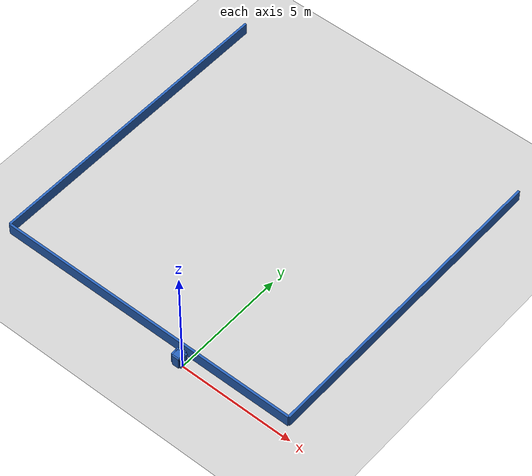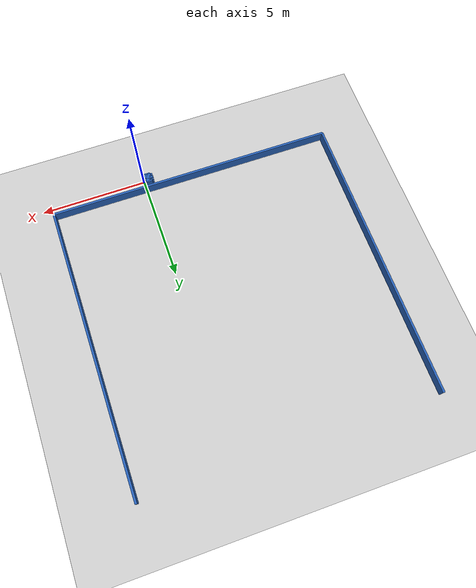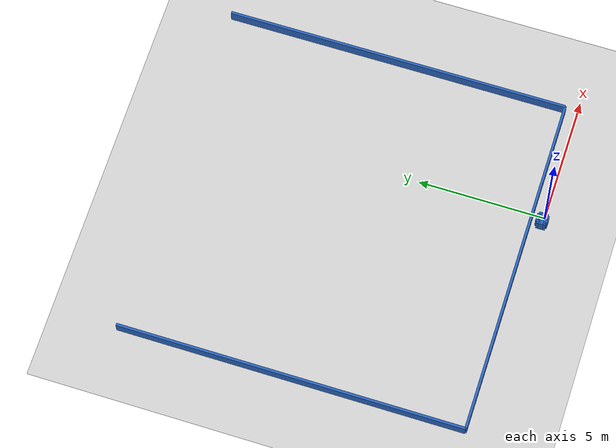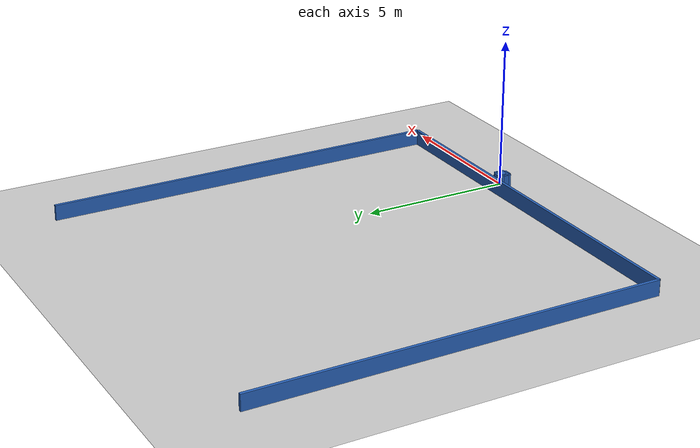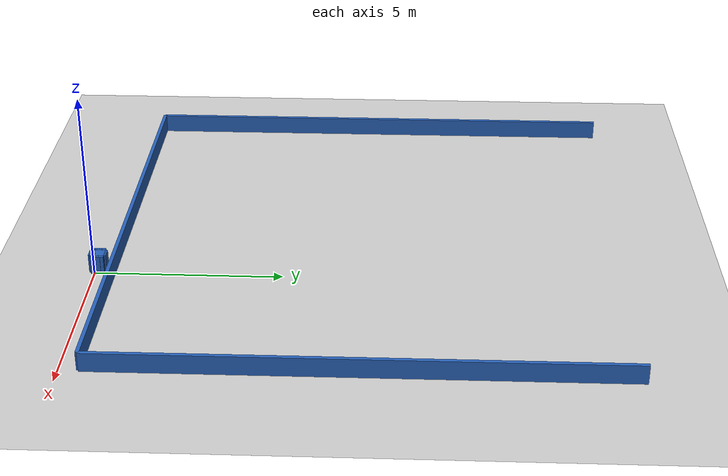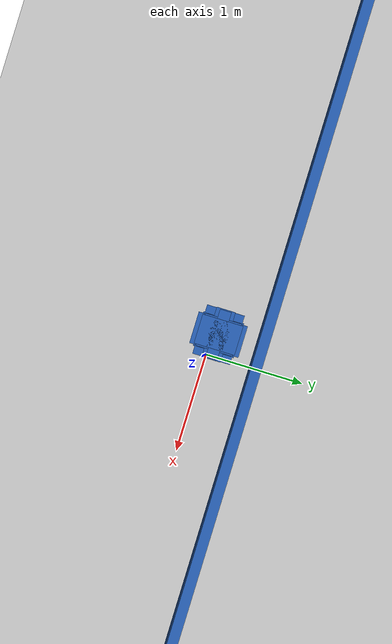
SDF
<?xml version="1.0" ?>
    <sdf version="1.5">
      <world name="default">
        <!-- A global light source -->
        <include>
          <uri>model://sun</uri>
        </include>
        <!-- A ground plane -->
        <include>
          <uri>model://ground_plane</uri>
        </include>

    <model name='libopen_space_final_T2B_56_75'>
      <static>1</static>
      <pose frame=''>-0.225000 0.075000 0.000000 0.000000 0.000000 0.000000</pose>
      <link name='link'>
        <inertial>
          <mass>1</mass>
          <inertia>
            <ixx>0.145833</ixx>
            <ixy>0</ixy>
            <ixz>0</ixz>
            <iyy>0.145833</iyy>
            <iyz>0</iyz>
            <izz>0.125</izz>
          </inertia>
        </inertial>
        <collision name='collision'>
          <geometry>
            <box>
              <size>0.28 0.39 1</size>
            </box>
          </geometry>
          <max_contacts>10</max_contacts>
          <surface>
            <contact>
              <ode/>
            </contact>
            <bounce/>
            <friction>
              <torsional>
                <ode/>
              </torsional>
              <ode/>
            </friction>
          </surface>
        </collision>
        <visual name='visual'>
          <geometry>
            <box>
              <size>0.28 0.39 1</size>
            </box>
          </geometry>
	    <material>
              <ambient>0.152000 0.379000 0.720000 1</ambient>
	      <diffuse>0.152000 0.379000 0.720000 1</diffuse>
          </material>
          <material>
            <script>
              <name>Gazebo/Grey</name>
              <uri>file://media/materials/scripts/gazebo.material</uri>
            </script>
          </material>
        </visual>
        <self_collide>0</self_collide>
        <kinematic>0</kinematic>
        <gravity>1</gravity>
      </link>
      <plugin name='libopen_space_final_T2B_56_75' filename='libopen_space_final_T2B_56_75.so'/>
    </model>

    <model name='libopen_space_final_T2B_99_64'>
      <static>1</static>
      <pose frame=''>-0.225000 0.075000 0.000000 0.000000 0.000000 0.000000</pose>
      <link name='link'>
        <inertial>
          <mass>1</mass>
          <inertia>
            <ixx>0.145833</ixx>
            <ixy>0</ixy>
            <ixz>0</ixz>
            <iyy>0.145833</iyy>
            <iyz>0</iyz>
            <izz>0.125</izz>
          </inertia>
        </inertial>
        <collision name='collision'>
          <geometry>
            <box>
              <size>0.46 0.11 1</size>
            </box>
          </geometry>
          <max_contacts>10</max_contacts>
          <surface>
            <contact>
              <ode/>
            </contact>
            <bounce/>
            <friction>
              <torsional>
                <ode/>
              </torsional>
              <ode/>
            </friction>
          </surface>
        </collision>
        <visual name='visual'>
          <geometry>
            <box>
              <size>0.46 0.11 1</size>
            </box>
          </geometry>
	    <material>
              <ambient>0.152000 0.379000 0.720000 1</ambient>
	      <diffuse>0.152000 0.379000 0.720000 1</diffuse>
          </material>
          <material>
            <script>
              <name>Gazebo/Grey</name>
              <uri>file://media/materials/scripts/gazebo.material</uri>
            </script>
          </material>
        </visual>
        <self_collide>0</self_collide>
        <kinematic>0</kinematic>
        <gravity>1</gravity>
      </link>
      <plugin name='libopen_space_final_T2B_99_64' filename='libopen_space_final_T2B_99_64.so'/>
    </model>

    <model name='libopen_space_final_T2B_119_97'>
      <static>1</static>
      <pose frame=''>-0.225000 0.075000 0.000000 0.000000 0.000000 0.000000</pose>
      <link name='link'>
        <inertial>
          <mass>1</mass>
          <inertia>
            <ixx>0.145833</ixx>
            <ixy>0</ixy>
            <ixz>0</ixz>
            <iyy>0.145833</iyy>
            <iyz>0</iyz>
            <izz>0.125</izz>
          </inertia>
        </inertial>
        <collision name='collision'>
          <geometry>
            <box>
              <size>0.31 0.35 1</size>
            </box>
          </geometry>
          <max_contacts>10</max_contacts>
          <surface>
            <contact>
              <ode/>
            </contact>
            <bounce/>
            <friction>
              <torsional>
                <ode/>
              </torsional>
              <ode/>
            </friction>
          </surface>
        </collision>
        <visual name='visual'>
          <geometry>
            <box>
              <size>0.31 0.35 1</size>
            </box>
          </geometry>
	    <material>
              <ambient>0.152000 0.379000 0.720000 1</ambient>
	      <diffuse>0.152000 0.379000 0.720000 1</diffuse>
          </material>
          <material>
            <script>
              <name>Gazebo/Grey</name>
              <uri>file://media/materials/scripts/gazebo.material</uri>
            </script>
          </material>
        </visual>
        <self_collide>0</self_collide>
        <kinematic>0</kinematic>
        <gravity>1</gravity>
      </link>
      <plugin name='libopen_space_final_T2B_119_97' filename='libopen_space_final_T2B_119_97.so'/>
    </model>

    <model name='libopen_space_final_T2B_118_50'>
      <static>1</static>
      <pose frame=''>-0.225000 0.075000 0.000000 0.000000 0.000000 0.000000</pose>
      <link name='link'>
        <inertial>
          <mass>1</mass>
          <inertia>
            <ixx>0.145833</ixx>
            <ixy>0</ixy>
            <ixz>0</ixz>
            <iyy>0.145833</iyy>
            <iyz>0</iyz>
            <izz>0.125</izz>
          </inertia>
        </inertial>
        <collision name='collision'>
          <geometry>
            <box>
              <size>0.31 0.28 1</size>
            </box>
          </geometry>
          <max_contacts>10</max_contacts>
          <surface>
            <contact>
              <ode/>
            </contact>
            <bounce/>
            <friction>
              <torsional>
                <ode/>
              </torsional>
              <ode/>
            </friction>
          </surface>
        </collision>
        <visual name='visual'>
          <geometry>
            <box>
              <size>0.31 0.28 1</size>
            </box>
          </geometry>
	    <material>
              <ambient>0.152000 0.379000 0.720000 1</ambient>
	      <diffuse>0.152000 0.379000 0.720000 1</diffuse>
          </material>
          <material>
            <script>
              <name>Gazebo/Grey</name>
              <uri>file://media/materials/scripts/gazebo.material</uri>
            </script>
          </material>
        </visual>
        <self_collide>0</self_collide>
        <kinematic>0</kinematic>
        <gravity>1</gravity>
      </link>
      <plugin name='libopen_space_final_T2B_118_50' filename='libopen_space_final_T2B_118_50.so'/>
    </model>

    <model name='libopen_space_final_T2B_129_11'>
      <static>1</static>
      <pose frame=''>-0.225000 0.075000 0.000000 0.000000 0.000000 0.000000</pose>
      <link name='link'>
        <inertial>
          <mass>1</mass>
          <inertia>
            <ixx>0.145833</ixx>
            <ixy>0</ixy>
            <ixz>0</ixz>
            <iyy>0.145833</iyy>
            <iyz>0</iyz>
            <izz>0.125</izz>
          </inertia>
        </inertial>
        <collision name='collision'>
          <geometry>
            <box>
              <size>0.11 0.18 1</size>
            </box>
          </geometry>
          <max_contacts>10</max_contacts>
          <surface>
            <contact>
              <ode/>
            </contact>
            <bounce/>
            <friction>
              <torsional>
                <ode/>
              </torsional>
              <ode/>
            </friction>
          </surface>
        </collision>
        <visual name='visual'>
          <geometry>
            <box>
              <size>0.11 0.18 1</size>
            </box>
          </geometry>
	    <material>
              <ambient>0.152000 0.379000 0.720000 1</ambient>
	      <diffuse>0.152000 0.379000 0.720000 1</diffuse>
          </material>
          <material>
            <script>
              <name>Gazebo/Grey</name>
              <uri>file://media/materials/scripts/gazebo.material</uri>
            </script>
          </material>
        </visual>
        <self_collide>0</self_collide>
        <kinematic>0</kinematic>
        <gravity>1</gravity>
      </link>
      <plugin name='libopen_space_final_T2B_129_11' filename='libopen_space_final_T2B_129_11.so'/>
    </model>

    <model name='libopen_space_final_T2B_51_19'>
      <static>1</static>
      <pose frame=''>-0.225000 0.075000 0.000000 0.000000 0.000000 0.000000</pose>
      <link name='link'>
        <inertial>
          <mass>1</mass>
          <inertia>
            <ixx>0.145833</ixx>
            <ixy>0</ixy>
            <ixz>0</ixz>
            <iyy>0.145833</iyy>
            <iyz>0</iyz>
            <izz>0.125</izz>
          </inertia>
        </inertial>
        <collision name='collision'>
          <geometry>
            <box>
              <size>0.48 0.18 1</size>
            </box>
          </geometry>
          <max_contacts>10</max_contacts>
          <surface>
            <contact>
              <ode/>
            </contact>
            <bounce/>
            <friction>
              <torsional>
                <ode/>
              </torsional>
              <ode/>
            </friction>
          </surface>
        </collision>
        <visual name='visual'>
          <geometry>
            <box>
              <size>0.48 0.18 1</size>
            </box>
          </geometry>
	    <material>
              <ambient>0.152000 0.379000 0.720000 1</ambient>
	      <diffuse>0.152000 0.379000 0.720000 1</diffuse>
          </material>
          <material>
            <script>
              <name>Gazebo/Grey</name>
              <uri>file://media/materials/scripts/gazebo.material</uri>
            </script>
          </material>
        </visual>
        <self_collide>0</self_collide>
        <kinematic>0</kinematic>
        <gravity>1</gravity>
      </link>
      <plugin name='libopen_space_final_T2B_51_19' filename='libopen_space_final_T2B_51_19.so'/>
    </model>

    <model name='libopen_space_final_T2B_83_23'>
      <static>1</static>
      <pose frame=''>-0.225000 0.075000 0.000000 0.000000 0.000000 0.000000</pose>
      <link name='link'>
        <inertial>
          <mass>1</mass>
          <inertia>
            <ixx>0.145833</ixx>
            <ixy>0</ixy>
            <ixz>0</ixz>
            <iyy>0.145833</iyy>
            <iyz>0</iyz>
            <izz>0.125</izz>
          </inertia>
        </inertial>
        <collision name='collision'>
          <geometry>
            <box>
              <size>0.27 0.15 1</size>
            </box>
          </geometry>
          <max_contacts>10</max_contacts>
          <surface>
            <contact>
              <ode/>
            </contact>
            <bounce/>
            <friction>
              <torsional>
                <ode/>
              </torsional>
              <ode/>
            </friction>
          </surface>
        </collision>
        <visual name='visual'>
          <geometry>
            <box>
              <size>0.27 0.15 1</size>
            </box>
          </geometry>
	    <material>
              <ambient>0.152000 0.379000 0.720000 1</ambient>
	      <diffuse>0.152000 0.379000 0.720000 1</diffuse>
          </material>
          <material>
            <script>
              <name>Gazebo/Grey</name>
              <uri>file://media/materials/scripts/gazebo.material</uri>
            </script>
          </material>
        </visual>
        <self_collide>0</self_collide>
        <kinematic>0</kinematic>
        <gravity>1</gravity>
      </link>
      <plugin name='libopen_space_final_T2B_83_23' filename='libopen_space_final_T2B_83_23.so'/>
    </model>

    <model name='libopen_space_final_T2B_122_30'>
      <static>1</static>
      <pose frame=''>-0.225000 0.075000 0.000000 0.000000 0.000000 0.000000</pose>
      <link name='link'>
        <inertial>
          <mass>1</mass>
          <inertia>
            <ixx>0.145833</ixx>
            <ixy>0</ixy>
            <ixz>0</ixz>
            <iyy>0.145833</iyy>
            <iyz>0</iyz>
            <izz>0.125</izz>
          </inertia>
        </inertial>
        <collision name='collision'>
          <geometry>
            <box>
              <size>0.32 0.34 1</size>
            </box>
          </geometry>
          <max_contacts>10</max_contacts>
          <surface>
            <contact>
              <ode/>
            </contact>
            <bounce/>
            <friction>
              <torsional>
                <ode/>
              </torsional>
              <ode/>
            </friction>
          </surface>
        </collision>
        <visual name='visual'>
          <geometry>
            <box>
              <size>0.32 0.34 1</size>
            </box>
          </geometry>
	    <material>
              <ambient>0.152000 0.379000 0.720000 1</ambient>
	      <diffuse>0.152000 0.379000 0.720000 1</diffuse>
          </material>
          <material>
            <script>
              <name>Gazebo/Grey</name>
              <uri>file://media/materials/scripts/gazebo.material</uri>
            </script>
          </material>
        </visual>
        <self_collide>0</self_collide>
        <kinematic>0</kinematic>
        <gravity>1</gravity>
      </link>
      <plugin name='libopen_space_final_T2B_122_30' filename='libopen_space_final_T2B_122_30.so'/>
    </model>

    <model name='libopen_space_final_T2B_129_92'>
      <static>1</static>
      <pose frame=''>-0.225000 0.075000 0.000000 0.000000 0.000000 0.000000</pose>
      <link name='link'>
        <inertial>
          <mass>1</mass>
          <inertia>
            <ixx>0.145833</ixx>
            <ixy>0</ixy>
            <ixz>0</ixz>
            <iyy>0.145833</iyy>
            <iyz>0</iyz>
            <izz>0.125</izz>
          </inertia>
        </inertial>
        <collision name='collision'>
          <geometry>
            <box>
              <size>0.30 0.47 1</size>
            </box>
          </geometry>
          <max_contacts>10</max_contacts>
          <surface>
            <contact>
              <ode/>
            </contact>
            <bounce/>
            <friction>
              <torsional>
                <ode/>
              </torsional>
              <ode/>
            </friction>
          </surface>
        </collision>
        <visual name='visual'>
          <geometry>
            <box>
              <size>0.30 0.47 1</size>
            </box>
          </geometry>
	    <material>
              <ambient>0.152000 0.379000 0.720000 1</ambient>
	      <diffuse>0.152000 0.379000 0.720000 1</diffuse>
          </material>
          <material>
            <script>
              <name>Gazebo/Grey</name>
              <uri>file://media/materials/scripts/gazebo.material</uri>
            </script>
          </material>
        </visual>
        <self_collide>0</self_collide>
        <kinematic>0</kinematic>
        <gravity>1</gravity>
      </link>
      <plugin name='libopen_space_final_T2B_129_92' filename='libopen_space_final_T2B_129_92.so'/>
    </model>

    <model name='libopen_space_final_T2B_123_13'>
      <static>1</static>
      <pose frame=''>-0.225000 0.075000 0.000000 0.000000 0.000000 0.000000</pose>
      <link name='link'>
        <inertial>
          <mass>1</mass>
          <inertia>
            <ixx>0.145833</ixx>
            <ixy>0</ixy>
            <ixz>0</ixz>
            <iyy>0.145833</iyy>
            <iyz>0</iyz>
            <izz>0.125</izz>
          </inertia>
        </inertial>
        <collision name='collision'>
          <geometry>
            <box>
              <size>0.47 0.36 1</size>
            </box>
          </geometry>
          <max_contacts>10</max_contacts>
          <surface>
            <contact>
              <ode/>
            </contact>
            <bounce/>
            <friction>
              <torsional>
                <ode/>
              </torsional>
              <ode/>
            </friction>
          </surface>
        </collision>
        <visual name='visual'>
          <geometry>
            <box>
              <size>0.47 0.36 1</size>
            </box>
          </geometry>
	    <material>
              <ambient>0.152000 0.379000 0.720000 1</ambient>
	      <diffuse>0.152000 0.379000 0.720000 1</diffuse>
          </material>
          <material>
            <script>
              <name>Gazebo/Grey</name>
              <uri>file://media/materials/scripts/gazebo.material</uri>
            </script>
          </material>
        </visual>
        <self_collide>0</self_collide>
        <kinematic>0</kinematic>
        <gravity>1</gravity>
      </link>
      <plugin name='libopen_space_final_T2B_123_13' filename='libopen_space_final_T2B_123_13.so'/>
    </model>

    <model name='libopen_space_final_T2B_55_44'>
      <static>1</static>
      <pose frame=''>-0.225000 0.075000 0.000000 0.000000 0.000000 0.000000</pose>
      <link name='link'>
        <inertial>
          <mass>1</mass>
          <inertia>
            <ixx>0.145833</ixx>
            <ixy>0</ixy>
            <ixz>0</ixz>
            <iyy>0.145833</iyy>
            <iyz>0</iyz>
            <izz>0.125</izz>
          </inertia>
        </inertial>
        <collision name='collision'>
          <geometry>
            <box>
              <size>0.31 0.24 1</size>
            </box>
          </geometry>
          <max_contacts>10</max_contacts>
          <surface>
            <contact>
              <ode/>
            </contact>
            <bounce/>
            <friction>
              <torsional>
                <ode/>
              </torsional>
              <ode/>
            </friction>
          </surface>
        </collision>
        <visual name='visual'>
          <geometry>
            <box>
              <size>0.31 0.24 1</size>
            </box>
          </geometry>
	    <material>
              <ambient>0.152000 0.379000 0.720000 1</ambient>
	      <diffuse>0.152000 0.379000 0.720000 1</diffuse>
          </material>
          <material>
            <script>
              <name>Gazebo/Grey</name>
              <uri>file://media/materials/scripts/gazebo.material</uri>
            </script>
          </material>
        </visual>
        <self_collide>0</self_collide>
        <kinematic>0</kinematic>
        <gravity>1</gravity>
      </link>
      <plugin name='libopen_space_final_T2B_55_44' filename='libopen_space_final_T2B_55_44.so'/>
    </model>

    <model name='libopen_space_final_T2B_51_1'>
      <static>1</static>
      <pose frame=''>-0.225000 0.075000 0.000000 0.000000 0.000000 0.000000</pose>
      <link name='link'>
        <inertial>
          <mass>1</mass>
          <inertia>
            <ixx>0.145833</ixx>
            <ixy>0</ixy>
            <ixz>0</ixz>
            <iyy>0.145833</iyy>
            <iyz>0</iyz>
            <izz>0.125</izz>
          </inertia>
        </inertial>
        <collision name='collision'>
          <geometry>
            <box>
              <size>0.33 0.39 1</size>
            </box>
          </geometry>
          <max_contacts>10</max_contacts>
          <surface>
            <contact>
              <ode/>
            </contact>
            <bounce/>
            <friction>
              <torsional>
                <ode/>
              </torsional>
              <ode/>
            </friction>
          </surface>
        </collision>
        <visual name='visual'>
          <geometry>
            <box>
              <size>0.33 0.39 1</size>
            </box>
          </geometry>
	    <material>
              <ambient>0.152000 0.379000 0.720000 1</ambient>
	      <diffuse>0.152000 0.379000 0.720000 1</diffuse>
          </material>
          <material>
            <script>
              <name>Gazebo/Grey</name>
              <uri>file://media/materials/scripts/gazebo.material</uri>
            </script>
          </material>
        </visual>
        <self_collide>0</self_collide>
        <kinematic>0</kinematic>
        <gravity>1</gravity>
      </link>
      <plugin name='libopen_space_final_T2B_51_1' filename='libopen_space_final_T2B_51_1.so'/>
    </model>

    <model name='libopen_space_final_T2B_122_2'>
      <static>1</static>
      <pose frame=''>-0.225000 0.075000 0.000000 0.000000 0.000000 0.000000</pose>
      <link name='link'>
        <inertial>
          <mass>1</mass>
          <inertia>
            <ixx>0.145833</ixx>
            <ixy>0</ixy>
            <ixz>0</ixz>
            <iyy>0.145833</iyy>
            <iyz>0</iyz>
            <izz>0.125</izz>
          </inertia>
        </inertial>
        <collision name='collision'>
          <geometry>
            <box>
              <size>0.31 0.23 1</size>
            </box>
          </geometry>
          <max_contacts>10</max_contacts>
          <surface>
            <contact>
              <ode/>
            </contact>
            <bounce/>
            <friction>
              <torsional>
                <ode/>
              </torsional>
              <ode/>
            </friction>
          </surface>
        </collision>
        <visual name='visual'>
          <geometry>
            <box>
              <size>0.31 0.23 1</size>
            </box>
          </geometry>
	    <material>
              <ambient>0.152000 0.379000 0.720000 1</ambient>
	      <diffuse>0.152000 0.379000 0.720000 1</diffuse>
          </material>
          <material>
            <script>
              <name>Gazebo/Grey</name>
              <uri>file://media/materials/scripts/gazebo.material</uri>
            </script>
          </material>
        </visual>
        <self_collide>0</self_collide>
        <kinematic>0</kinematic>
        <gravity>1</gravity>
      </link>
      <plugin name='libopen_space_final_T2B_122_2' filename='libopen_space_final_T2B_122_2.so'/>
    </model>

        <model name='bottom_wall'>
          <static>1</static>
          <pose frame=''>-2.25 0.5 0.000000 0.000000 0.000000 1.57079632</pose>
          <link name='link'>
            <inertial>
            <mass>1</mass>
            <inertia>
              <ixx>0.145833</ixx>
              <ixy>0</ixy>
              <ixz>0</ixz>
              <iyy>0.145833</iyy>
              <iyz>0</iyz>
              <izz>0.125</izz>
            </inertia>
            </inertial>
            <collision name='collision'>
            <geometry>
              <box>
              <size>0.1 13.5 1</size>
              </box>
            </geometry>
            <max_contacts>10</max_contacts>
            <surface>
              <contact>
              <ode/>
              </contact>
              <bounce/>
              <friction>
              <torsional>
                <ode/>
              </torsional>
              <ode/>
              </friction>
            </surface>
            </collision>
            <visual name='visual'>
            <geometry>
              <box>
              <size>0.1 13.5 1</size>
              </box>
            </geometry>
            <material>
              <ambient>0.152000 0.379000 0.720000 1</ambient>
            <diffuse>0.152000 0.379000 0.720000 1</diffuse>
            </material>
            <material>
              <script>
              <name>Gazebo/Grey</name>
              <uri>file://media/materials/scripts/gazebo.material</uri>
              </script>
            </material>
            </visual>
            <self_collide>0</self_collide>
            <kinematic>0</kinematic>
            <gravity>1</gravity>
          </link>
        </model>

        <model name='left_wall'>
          <static>1</static>
          <pose frame=''>-9 7.25 0.000000 0.000000 0.000000 0.000000</pose>
          <link name='link'>
            <inertial>
            <mass>1</mass>
            <inertia>
              <ixx>0.145833</ixx>
              <ixy>0</ixy>
              <ixz>0</ixz>
              <iyy>0.145833</iyy>
              <iyz>0</iyz>
              <izz>0.125</izz>
            </inertia>
            </inertial>
            <collision name='collision'>
            <geometry>
              <box>
              <size>0.1 13.5 1</size>
              </box>
            </geometry>
            <max_contacts>10</max_contacts>
            <surface>
              <contact>
              <ode/>
              </contact>
              <bounce/>
              <friction>
              <torsional>
                <ode/>
              </torsional>
              <ode/>
              </friction>
            </surface>
            </collision>
            <visual name='visual'>
            <geometry>
              <box>
              <size>0.1 13.5 1</size>
              </box>
            </geometry>
            <material>
              <ambient>0.152000 0.379000 0.720000 1</ambient>
            <diffuse>0.152000 0.379000 0.720000 1</diffuse>
            </material>
            <material>
              <script>
              <name>Gazebo/Grey</name>
              <uri>file://media/materials/scripts/gazebo.material</uri>
              </script>
            </material>
            </visual>
            <self_collide>0</self_collide>
            <kinematic>0</kinematic>
            <gravity>1</gravity>
          </link>
        </model>

        <model name='right_wall'>
          <static>1</static>
          <pose frame=''>4.5 7.25 0.000000 0.000000 0.000000 0.000000</pose>
          <link name='link'>
            <inertial>
            <mass>1</mass>
            <inertia>
              <ixx>0.145833</ixx>
              <ixy>0</ixy>
              <ixz>0</ixz>
              <iyy>0.145833</iyy>
              <iyz>0</iyz>
              <izz>0.125</izz>
            </inertia>
            </inertial>
            <collision name='collision'>
            <geometry>
              <box>
              <size>0.1 13.5 1</size>
              </box>
            </geometry>
            <max_contacts>10</max_contacts>
            <surface>
              <contact>
              <ode/>
              </contact>
              <bounce/>
              <friction>
              <torsional>
                <ode/>
              </torsional>
              <ode/>
              </friction>
            </surface>
            </collision>
            <visual name='visual'>
            <geometry>
              <box>
              <size>0.1 13.5 1</size>
              </box>
            </geometry>
            <material>
              <ambient>0.152000 0.379000 0.720000 1</ambient>
            <diffuse>0.152000 0.379000 0.720000 1</diffuse>
            </material>
            <material>
              <script>
              <name>Gazebo/Grey</name>
              <uri>file://media/materials/scripts/gazebo.material</uri>
              </script>
            </material>
            </visual>
            <self_collide>0</self_collide>
            <kinematic>0</kinematic>
            <gravity>1</gravity>
          </link>
        </model>

      </world>
    </sdf>"
